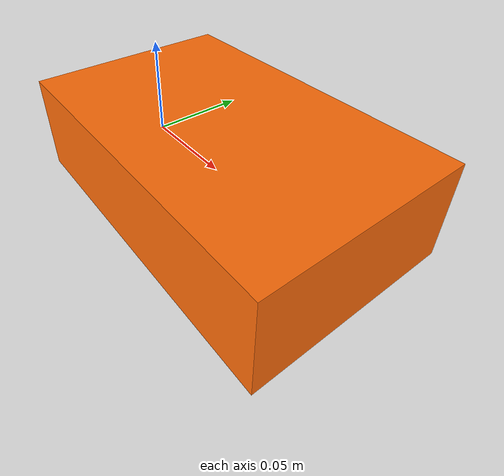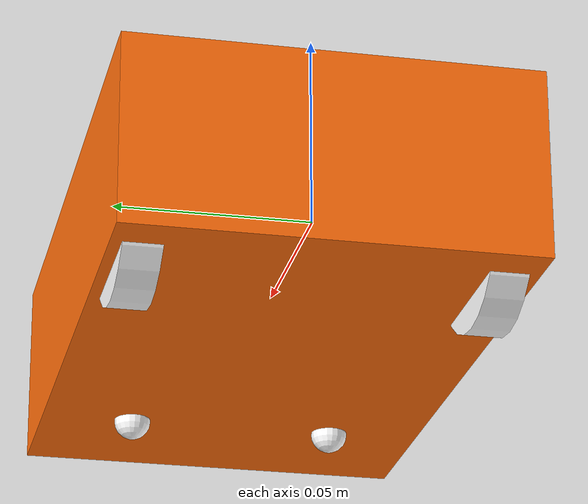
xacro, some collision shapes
<?xml version="1.0"?>
<robot xmlns:xacro="http://www.ros.org/wiki/xacro" >

    <xacro:include filename="inertial_macros.xacro"/>

    <material name="white">
        <color rgba="1 1 1 1" />
    </material>

    <material name="orange">
        <color rgba="${255/255} ${108/255} ${10/255} 1.0"/>
    </material>

    <material name="blue">
        <color rgba="0.2 0.2 1 1"/>
    </material>

    <material name="black">
        <color rgba="0 0 0 1"/>
    </material>

    <material name="yellow">
        <color rgba="1 1 0 1"/>
    </material>

    <material name="deeporange" >
        <color rgba="0.8627450980392157 0.30196078431372547 0.00392156862745098 1.0" />
    </material>

    <!-- BASE LINK -->

    <link name="base_link">

    </link>

    <!-- CHASSIS LINK -->

    <joint name="chassis_joint" type="fixed">
        <parent link="base_link"/>
        <child link="chassis"/>
        <origin xyz="-0.06 0 -0.01"/>
        <!-- the wheel is 0.03 from the rear -->
    </joint>

    <link name="chassis">
        <visual>
            <origin xyz="0.075 0 0"/>
            <!-- adding lia mesh -->
            <geometry>
                <mesh filename="file://$(find lia_robot)/meshes/lia_car_chassis_v2.stl"/>
            </geometry>
            <material name="orange"/>
        </visual>
        <collision>
            <origin xyz="0.116 0 0.018"/>
            <geometry>
                <box size="0.17 0.106 0.05"/>
            </geometry>
        </collision>
        <xacro:inertial_box mass="0.03" x="0.22" y="0.10" z="0.05">
            <origin xyz="0 0 0" rpy="0 0 0"/>
        </xacro:inertial_box>
    </link>

    <gazebo reference="chassis">
        <material>Gazebo/Orange</material>
    </gazebo>

    <!-- LEFT WHEEL LINK -->

    <joint name="left_wheel_joint" type="continuous">
        <parent link="base_link"/>
        <child link="left_wheel"/>
        <origin xyz="0 0.045 0" rpy="-${pi/2} 0 0" />
        <axis xyz="0 0 1"/>
    </joint>

    <link name="left_wheel">
        <visual>
            <geometry>
                <cylinder radius="0.025" length="0.01"/>
            </geometry>
            <material name="white"/>
        </visual>
        <collision>
            <geometry>
                <cylinder radius="0.025" length="0.01"/>
            </geometry>
        </collision>
        <xacro:inertial_cylinder mass="0.01" length="0.01" radius="0.025">
            <origin xyz="0 0 0" rpy="0 0 0"/>
        </xacro:inertial_cylinder>
    </link>

    <gazebo reference="left_wheel">
        <material>Gazebo/White</material>
    </gazebo>

    <!-- RIGHT WHEEL LINK -->

    <joint name="right_wheel_joint" type="continuous">
        <parent link="base_link"/>
        <child link="right_wheel"/>
        <origin xyz="0 -0.045 0" rpy="${pi/2} 0 0" />
        <axis xyz="0 0 -1"/>
    </joint>

    <link name="right_wheel">
        <visual>
            <geometry>
                <cylinder radius="0.025" length="0.01"/>
            </geometry>
            <material name="white"/>
        </visual>
        <collision>
            <geometry>
                <cylinder radius="0.025" length="0.01"/>
            </geometry>
        </collision>
        <xacro:inertial_cylinder mass="0.01" length="0.01" radius="0.025">
            <origin xyz="0 0 0" rpy="0 0 0"/>
        </xacro:inertial_cylinder>
    </link>

   <gazebo reference="right_wheel">
        <material>Gazebo/White</material>
    </gazebo>

    <!-- FIRST CASTER WHEEL LINK -->

    <joint name="caster_wheel_joint" type="fixed">
        <parent link="chassis"/>
        <child link="caster_wheel"/>
        <origin xyz="0.165 0.028 -0.0075"/>
    </joint>

    <link name="caster_wheel">
        <visual>
            <geometry>
                <sphere radius="0.005"/>
            </geometry>
            <material name="white"/>
        </visual>
        <collision>
            <geometry>
                <sphere radius="0.005"/>
            </geometry>
        </collision>
        <xacro:inertial_sphere mass="0.01" radius="0.005">
            <origin xyz="0 0 0" rpy="0 0 0"/>
        </xacro:inertial_sphere>
    </link>

    <gazebo reference="caster_wheel">
        <material>Gazebo/White</material>
        <mu1 value="0.001" />
        <mu2 value="0.001" />
    </gazebo>

    <!-- SECOND CASTER WHEEL LINK -->

    <joint name="caster_wheel_joint2" type="fixed">
        <parent link="chassis"/>
        <child link="caster_wheel2"/>
        <origin xyz="0.165 -0.028 -0.0075"/>
    </joint>

    <link name="caster_wheel2">
        <visual>
            <geometry>
                <sphere radius="0.005"/>
            </geometry>
            <material name="white"/>
        </visual>
        <collision>
            <geometry>
                <sphere radius="0.005"/>
            </geometry>
        </collision>
        <xacro:inertial_sphere mass="0.01" radius="0.005">
            <origin xyz="0 0 0" rpy="0 0 0"/>
        </xacro:inertial_sphere>
    </link>

    <gazebo reference="caster_wheel2">
        <material>Gazebo/White</material>
        <mu1 value="0.001" />
        <mu2 value="0.001" />
    </gazebo>

    <gazebo>
        <plugin filename="libgazebo_ros_p3d.so" name="lia_groundtruth_sim">
        <update_rate>100.0</update_rate>
        <body_name>base_link</body_name>
        <topic_name>ground_truth/state</topic_name>
        <gaussian_noise>0.0</gaussian_noise>
        <frame_name>map</frame_name>
      </plugin>
    </gazebo>

</robot>
